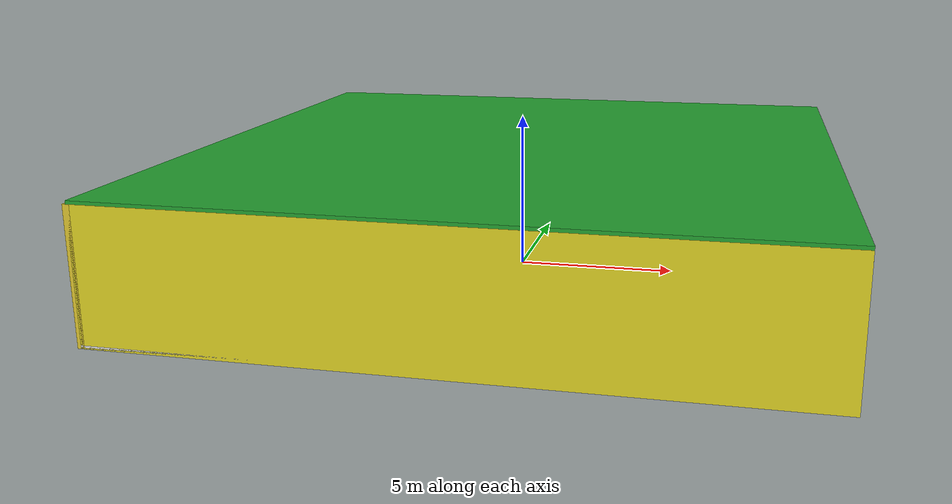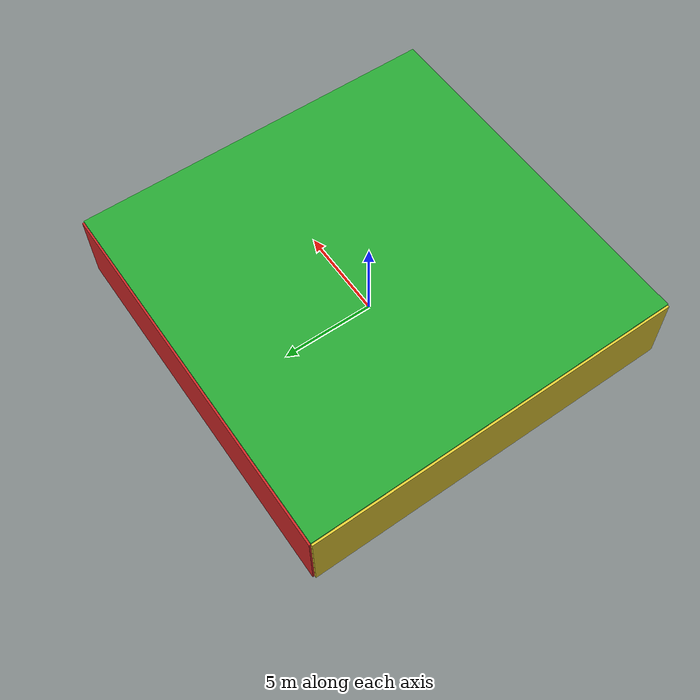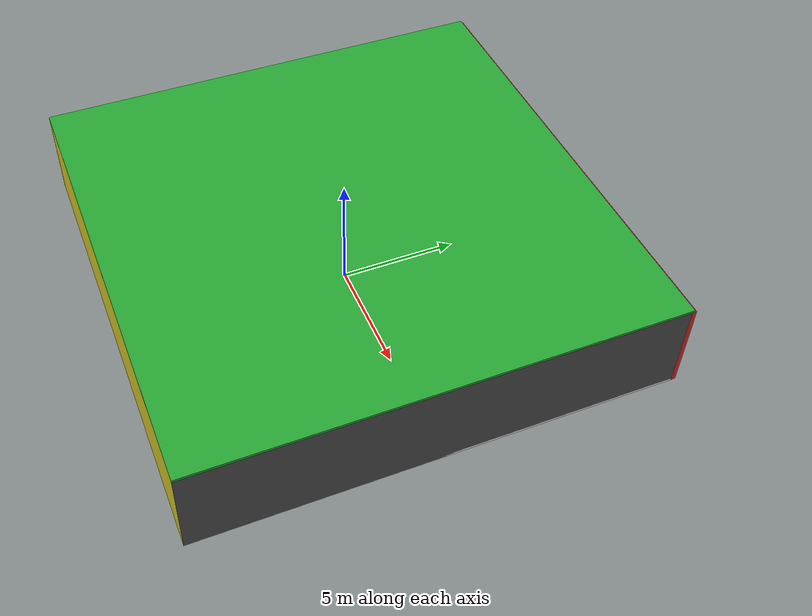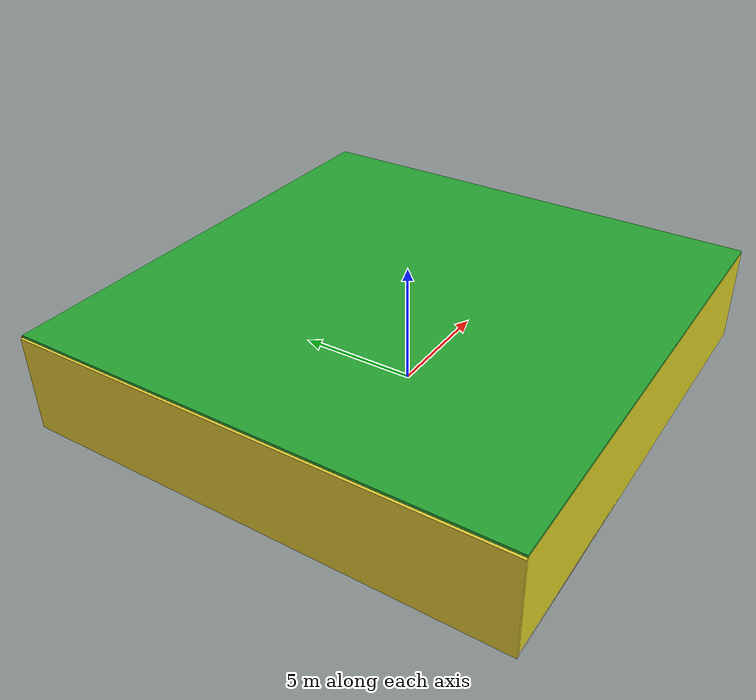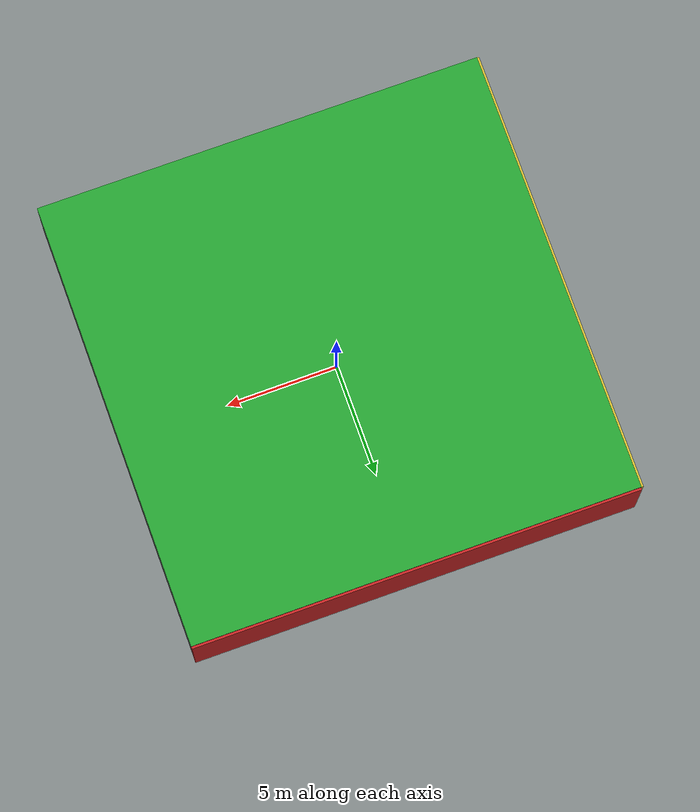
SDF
<sdf version="1.4">
 <world name="default">
  <physics type="ode">
   <max_step_size>0.001</max_step_size>
   <real_time_factor>1</real_time_factor>
   <real_time_update_rate>1000</real_time_update_rate>
   <gravity>0 0 -9.8</gravity>
  </physics>
  <scene><ambient>0.4 0.4 0.4 1</ambient><background>0.7 0.7 0.7 1</background><shadows>1</shadows></scene>
  <model name="Surrounding">
   <static>1</static>
   <link name="Ceiling">
    <collision name="Ceiling_Collision"><geometry><box><size>20 20 0.1</size></box></geometry></collision>
    <visual name="Ceiling_Visual">
     <geometry><box><size>20 20 0.1</size></box></geometry>
     <material>
      <script><uri>file://media/materials/scripts/gazebo.material</uri><name>Gazebo/Green</name></script>
     </material>
    </visual>
    <pose>0 0 4.05 0 0 0</pose>
   </link>
   <link name="Wall_South">
    <collision name="Wall_South_Collision">
     <geometry><box><size>20 0 4</size></box></geometry>
     <pose>0 0 2 0 -0 0</pose>
    </collision>
    <visual name="Wall_South_Visual">
     <pose>0 0 2 0 -0 0</pose>
     <geometry><box><size>20 0 4</size></box></geometry>
     <material>
      <script><uri>file://media/materials/scripts/gazebo.material</uri><name>Gazebo/YellowGlow</name></script>
     </material>
    </visual>
    <velocity_decay><linear>0</linear><angular>0</angular></velocity_decay>
    <pose>0 -10 0 0 -0 0</pose>
   </link>
   <link name="Wall_East">
    <collision name="Wall_21_Collision">
     <geometry><box><size>20 0 4</size></box></geometry>
     <pose>0 0 2 0 -0 0</pose>
    </collision>
    <visual name="Wall_21_Visual">
     <pose>0 0 2 0 -0 0</pose>
     <geometry><box><size>20 0 4</size></box></geometry>
     <material>
      <script><uri>file://media/materials/scripts/gazebo.material</uri><name>Gazebo/DarkGrey</name></script>
     </material>
    </visual>
    <velocity_decay><linear>0</linear><angular>0</angular></velocity_decay>
    <pose>10 0 0 0 -0 1.5708</pose>
   </link>
   <link name="Wall_North">
    <collision name="Wall_22_Collision">
     <geometry><box><size>20 0.2 4</size></box></geometry>
     <pose>0 0 2 0 -0 0</pose>
    </collision>
    <visual name="Wall_22_Visual">
     <pose>0 0 2 0 -0 0</pose>
     <geometry><box><size>20 0.2 4</size></box></geometry>
     <material>
      <script><uri>file://media/materials/scripts/gazebo.material</uri><name>Gazebo/RedGlow</name></script>
     </material>
    </visual>
    <velocity_decay><linear>0</linear><angular>0</angular></velocity_decay>
    <pose>0 10 0 0 -0 0</pose>
   </link>
   <link name="Wall_West">
    <collision name="Wall_23_Collision">
     <geometry><box><size>20 0.2 4</size></box></geometry>
     <pose>0 0 2 0 -0 0</pose>
    </collision>
    <visual name="Wall_23_Visual">
     <pose>0 0 2 0 -0 0</pose>
     <geometry><box><size>20 0.2 4</size></box></geometry>
     <material>
      <script><uri>file://media/materials/scripts/gazebo.material</uri><name>Gazebo/ZincYellow</name></script>
     </material>
    </visual>
    <velocity_decay><linear>0</linear><angular>0</angular></velocity_decay>
    <pose>-10 0 0 0 0 -1.5708</pose>
   </link>
   <link name="Ground_link">
    <collision name="collision">
     <pose>0 0 .05 0 -0 0</pose>
     <geometry><box><size>20 20 0.1</size></box></geometry>
    </collision>
    <visual name="visual">
     <pose>0 0 .05 0 -0 0</pose>
     <geometry><box><size>20 20 0.1</size></box></geometry>
     <material>
      <script><uri>file://media/materials/scripts/gazebo.material</uri><name>Gazebo/White</name></script>
     </material>
    </visual>
   </link>
   <static>1</static>
  </model>
  <spherical_coordinates>
   <surface_model>EARTH_WGS84</surface_model>
   <latitude_deg>0</latitude_deg>
   <longitude_deg>0</longitude_deg>
   <elevation>0</elevation>
   <heading_deg>0</heading_deg>
  </spherical_coordinates>
  <light name="lightball_0" type="diffuse">
   <diffuse>0.8 0.8 0.8 1</diffuse>
   <specular>0.2 0.2 0.2 1</specular>
   <attenuation>
    <range>100</range>
    <constant>0.7</constant>
    <linear>0.01</linear>
    <quadratic>0.001</quadratic>
   </attenuation>
   <direction>-0.5 0.1 -0.9</direction>
   <pose>-7.62978826682 -5.18864780879 1.9177741274 0 0 0</pose>
  </light>
  <light name="lightball_1" type="diffuse">
   <diffuse>0.8 0.8 0.8 1</diffuse>
   <specular>0.2 0.2 0.2 1</specular>
   <attenuation>
    <range>100</range>
    <constant>0.7</constant>
    <linear>0.01</linear>
    <quadratic>0.001</quadratic>
   </attenuation>
   <direction>-0.5 0.1 -0.9</direction>
   <pose>1.13061019987 8.69141790323 3.3047950806 0 0 0</pose>
  </light>
  <light name="lightball_2" type="diffuse">
   <diffuse>0.8 0.8 0.8 1</diffuse>
   <specular>0.2 0.2 0.2 1</specular>
   <attenuation>
    <range>100</range>
    <constant>0.7</constant>
    <linear>0.01</linear>
    <quadratic>0.001</quadratic>
   </attenuation>
   <direction>-0.5 0.1 -0.9</direction>
   <pose>-4.7495780229 4.93536853344 1.62073451877 0 0 0</pose>
  </light>
  <light name="lightball_3" type="diffuse">
   <diffuse>0.8 0.8 0.8 1</diffuse>
   <specular>0.2 0.2 0.2 1</specular>
   <attenuation>
    <range>100</range>
    <constant>0.7</constant>
    <linear>0.01</linear>
    <quadratic>0.001</quadratic>
   </attenuation>
   <direction>-0.5 0.1 -0.9</direction>
   <pose>1.4287924118 -4.15698509382 1.30968914635 0 0 0</pose>
  </light>
  <light name="lightball_4" type="diffuse">
   <diffuse>0.8 0.8 0.8 1</diffuse>
   <specular>0.2 0.2 0.2 1</specular>
   <attenuation>
    <range>100</range>
    <constant>0.7</constant>
    <linear>0.01</linear>
    <quadratic>0.001</quadratic>
   </attenuation>
   <direction>-0.5 0.1 -0.9</direction>
   <pose>-5.01527404992 -3.93558593619 1.01433027311 0 0 0</pose>
  </light>
  <light name="lightball_5" type="diffuse">
   <diffuse>0.8 0.8 0.8 1</diffuse>
   <specular>0.2 0.2 0.2 1</specular>
   <attenuation>
    <range>100</range>
    <constant>0.7</constant>
    <linear>0.01</linear>
    <quadratic>0.001</quadratic>
   </attenuation>
   <direction>-0.5 0.1 -0.9</direction>
   <pose>-9.96025513069 2.08177105551 3.3495436335 0 0 0</pose>
  </light>
  <include><uri>model://cabinet</uri><pose>-6.688833879 1.45524338117 0 0 0 1.41112449076</pose></include>
  <include><uri>model://cabinet</uri><pose>-5.39084489849 2.45587345897 0 0 0 1.48397969225</pose></include>
  <include><uri>model://cabinet</uri><pose>-2.14964654092 -7.73157656275 0 0 0 0.561639631709</pose></include>
  <include>
   <uri>model://construction_cone</uri>
   <pose>-1.36437942752 -3.62038326174 0 0 0 0.160482771031</pose>
  </include>
  <include><uri>model://cabinet</uri><pose>2.49950424165 -7.70422929914 0 0 0 2.88476644511</pose></include>
  <include>
   <uri>model://construction_cone</uri>
   <pose>1.87496944514 8.50458605651 0 0 0 0.926834928297</pose>
  </include>
  <include>
   <uri>model://construction_cone</uri>
   <pose>4.33975780408 -7.99548084929 0 0 0 2.76400120918</pose>
  </include>
  <include><uri>model://cabinet</uri><pose>3.55407138194 0.610670315353 0 0 0 2.00024209009</pose></include>
  <include><uri>model://table</uri><pose>5.66546282824 3.79135390436 0 0 0 2.96541634358</pose></include>
  <include>
   <uri>model://construction_cone</uri>
   <pose>8.35877273497 -7.3298175005 0 0 0 1.73756652248</pose>
  </include>
 </world>
</sdf>

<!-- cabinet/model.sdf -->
<sdf version="1.5">
  <model name="cabinet">
    <static>true</static>
    <link name="cabinet_bottom_plate">
      <inertial>
        <pose>0 0 -1 0 0 0</pose>
        <inertia>
          <ixx>2.050000</ixx>
          <ixy>0</ixy>
          <ixz>0</ixz>
          <iyy>2.050000</iyy>
          <iyz>0</iyz>
          <izz>2.050000</izz>
        </inertia>
        <mass>25.000000</mass>
      </inertial>
      <collision name="cabinet_bottom_plate_geom">
        <pose>0 0 0.010000 0 0 0</pose>
        <geometry>
          <box>
            <size>0.450000 0.450000 0.020000</size>
          </box>
        </geometry>
      </collision>
      <visual name="cabinet_bottom_plate_geom_visual">
        <pose>0 0 0.010000 0 0 0</pose>
        <geometry>
          <box>
            <size>0.450000 0.450000 0.020000</size>
          </box>
        </geometry>
        <material>
          <script>
            <uri>model://media/materials/scripts/gazebo.material</uri>
            <name>Gazebo/Wood</name>
          </script>
        </material>
      </visual>
      <collision name="cabinet_bottom_plate_geom_cabinet_back_plate">
        <pose>0.235000 0 0.510000 0 0 0</pose>
        <geometry>
          <box>
            <size>0.020000 0.450000 1.020000</size>
          </box>
        </geometry>
      </collision>
      <visual name="cabinet_bottom_plate_geom_cabinet_back_plate_visual">
        <pose>0.235000 0 0.510000 0 0 0</pose>
        <geometry>
          <box>
            <size>0.020000 0.450000 1.020000</size>
          </box>
        </geometry>
        <material>
          <script>
            <uri>model://media/materials/scripts/gazebo.material</uri>
            <name>Gazebo/Wood</name>
          </script>
        </material>
      </visual>
      <collision name="cabinet_bottom_plate_geom_cabinet_left_plate">
        <pose>0 0.235000 0.510000 0 0 0</pose>
        <geometry>
          <box>
            <size>0.450000 0.020000 1.020000</size>
          </box>
        </geometry>
      </collision>
      <visual name="cabinet_bottom_plate_geom_cabinet_left_plate_visual">
        <pose>0 0.235000 0.510000 0 0 0</pose>
        <geometry>
          <box>
            <size>0.450000 0.020000 1.020000</size>
          </box>
        </geometry>
        <material>
          <script>
            <uri>model://media/materials/scripts/gazebo.material</uri>
            <name>Gazebo/Wood</name>
          </script>
        </material>
      </visual>
      <collision name="cabinet_bottom_plate_geom_cabinet_middle_plate">
        <pose>0 0 0.510000 0 0 0</pose>
        <geometry>
          <box>
            <size>0.450000 0.450000 0.020000</size>
          </box>
        </geometry>
      </collision>
      <visual name="cabinet_bottom_plate_geom_cabinet_middle_plate_visual">
        <pose>0 0 0.510000 0 0 0</pose>
        <geometry>
          <box>
            <size>0.450000 0.450000 0.020000</size>
          </box>
        </geometry>
        <material>
          <script>
            <uri>model://media/materials/scripts/gazebo.material</uri>
            <name>Gazebo/Wood</name>
          </script>
        </material>
      </visual>
      <collision name="cabinet_bottom_plate_geom_cabinet_right_plate">
        <pose>0 -0.235000 0.510000 0 0 0</pose>
        <geometry>
          <box>
            <size>0.450000 0.020000 1.020000</size>
          </box>
        </geometry>
      </collision>
      <visual name="cabinet_bottom_plate_geom_cabinet_right_plate_visual">
        <pose>0 -0.235000 0.510000 0 0 0</pose>
        <geometry>
          <box>
            <size>0.450000 0.020000 1.020000</size>
          </box>
        </geometry>
        <material>
          <script>
            <uri>model://media/materials/scripts/gazebo.material</uri>
            <name>Gazebo/Wood</name>
          </script>
        </material>
      </visual>
      <collision name="cabinet_bottom_plate_geom_cabinet_top_plate">
        <pose>0 0 1.010000 0 0 0</pose>
        <geometry>
          <box>
            <size>0.450000 0.450000 0.020000</size>
          </box>
        </geometry>
      </collision>
      <visual name="cabinet_bottom_plate_geom_cabinet_top_plate_visual">
        <pose>0 0 1.010000 0 0 0</pose>
        <geometry>
          <box>
            <size>0.450000 0.450000 0.020000</size>
          </box>
        </geometry>
        <material>
          <script>
            <uri>model://media/materials/scripts/gazebo.material</uri>
            <name>Gazebo/Wood</name>
          </script>
        </material>
      </visual>
    </link>
  </model>
</sdf>

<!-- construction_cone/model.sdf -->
<sdf version="1.5">
  <model name="Construction Cone">
    <link name="link">
      <collision name="collision">
        <geometry>
          <mesh>
            <scale>10 10 10</scale>
            <uri>file://isr-testbed/construction_cone/meshes/construction_cone.dae</uri>
          </mesh>
        </geometry>
      </collision>
      <visual name="visual">
        <geometry>
          <mesh>
            <scale>10 10 10</scale>
            <uri>file://isr-testbed/construction_cone/meshes/construction_cone.dae</uri>
          </mesh>
        </geometry>
      </visual>
    </link>
  </model>
</sdf>

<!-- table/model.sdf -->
<sdf version="1.5">
  <model name="table">
    <static>true</static>
    <link name="link">
      <collision name="surface">
        <pose>0 0 1.0 0 0 0</pose>
        <geometry>
          <box>
            <size>1.5 0.8 0.03</size>
          </box>
        </geometry>
        <surface>
          <friction>
            <ode>
              <mu>0.6</mu>
              <mu2>0.6</mu2>
            </ode>
          </friction>
        </surface>
      </collision>
      <visual name="visual1">
        <pose>0 0 1.0 0 0 0</pose>
        <geometry>
          <box>
            <size>1.5 0.8 0.03</size>
          </box>
        </geometry>
        <material>
          <script>
            <uri>model://media/materials/scripts/gazebo.material</uri>
            <name>Gazebo/Wood</name>
          </script>
        </material>
      </visual>
      <collision name="front_left_leg">
        <pose>0.68 0.38 0.5 0 0 0</pose>
        <geometry>
          <cylinder>
            <radius>0.02</radius>
            <length>1.0</length>
          </cylinder>
        </geometry>
      </collision>
      <visual name="front_left_leg">
        <pose>0.68 0.38 0.5 0 0 0</pose>
        <geometry>
          <cylinder>
            <radius>0.02</radius>
            <length>1.0</length>
          </cylinder>
        </geometry>
        <material>
          <script>
            <uri>model://media/materials/scripts/gazebo.material</uri>
            <name>Gazebo/Grey</name>
          </script>
        </material>
      </visual>
      <collision name="front_right_leg">
        <pose>0.68 -0.38 0.5 0 0 0</pose>
        <geometry>
          <cylinder>
            <radius>0.02</radius>
            <length>1.0</length>
          </cylinder>
        </geometry>
      </collision>
      <visual name="front_right_leg">
        <pose>0.68 -0.38 0.5 0 0 0</pose>
        <geometry>
          <cylinder>
            <radius>0.02</radius>
            <length>1.0</length>
          </cylinder>
        </geometry>
        <material>
          <script>
            <uri>model://media/materials/scripts/gazebo.material</uri>
            <name>Gazebo/Grey</name>
          </script>
        </material>
      </visual>
      <collision name="back_right_leg">
        <pose>-0.68 -0.38 0.5 0 0 0</pose>
        <geometry>
          <cylinder>
            <radius>0.02</radius>
            <length>1.0</length>
          </cylinder>
        </geometry>
      </collision>
      <visual name="back_right_leg">
        <pose>-0.68 -0.38 0.5 0 0 0</pose>
        <geometry>
          <cylinder>
            <radius>0.02</radius>
            <length>1.0</length>
          </cylinder>
        </geometry>
        <material>
          <script>
            <uri>model://media/materials/scripts/gazebo.material</uri>
            <name>Gazebo/Grey</name>
          </script>
        </material>
      </visual>
      <collision name="back_left_leg">
        <pose>-0.68 0.38 0.5 0 0 0</pose>
        <geometry>
          <cylinder>
            <radius>0.02</radius>
            <length>1.0</length>
          </cylinder>
        </geometry>
      </collision>
      <visual name="back_left_leg">
        <pose>-0.68 0.38 0.5 0 0 0</pose>
        <geometry>
          <cylinder>
            <radius>0.02</radius>
            <length>1.0</length>
          </cylinder>
        </geometry>
        <material>
          <script>
            <uri>model://media/materials/scripts/gazebo.material</uri>
            <name>Gazebo/Grey</name>
          </script>
        </material>
      </visual>
    </link>
  </model>
</sdf>
